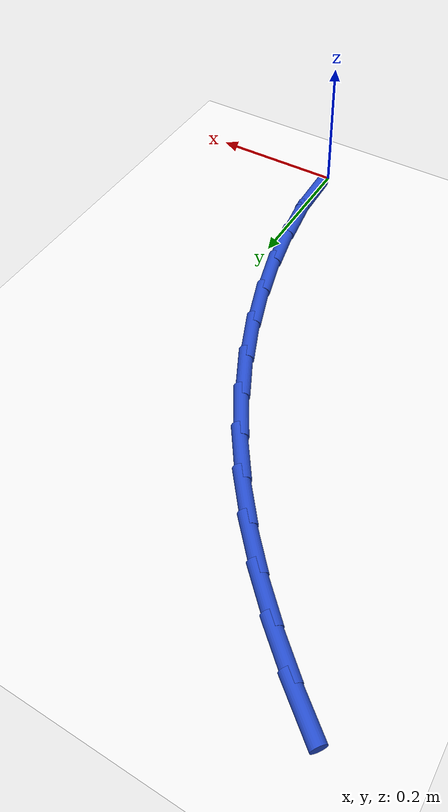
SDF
<sdf version="1.6">
 <world name="default">
  <model name="ground_plane">
   <static>1</static>
   <link name="link">
    <collision name="collision">
     <geometry><plane><normal>0 0 1</normal><size>100 100</size></plane></geometry>
     <surface><friction><ode><mu>100</mu><mu2>50</mu2></ode></friction></surface>
    </collision>
    <visual name="visual">
     <cast_shadows>0</cast_shadows>
     <geometry><plane><normal>0 0 1</normal><size>100 100</size></plane></geometry>
     <material>
      <script><uri>file://media/materials/scripts/gazebo.material</uri><name>Gazebo/WhiteGlow</name></script>
     </material>
    </visual>
   </link>
  </model>
  <model name="line">
   <link name="link_2">
    <pose>-0.008749417525320376 0.12793536772634137 0.01 0 1.57 -1.4085324584083592</pose>
    <collision name="collision">
     <geometry><cylinder><radius>0.01</radius><length>0.08</length></cylinder></geometry>
    </collision>
    <visual name="visual">
     <material>
      <script><name>Gazebo/Blue</name><uri>file://media/materials/scripts/gazebo.material</uri></script>
     </material>
     <geometry><cylinder><radius>0.01</radius><length>0.08</length></cylinder></geometry>
    </visual>
   </link>
   <link name="link_3">
    <pose>-0.019140808998990202 0.19141241177788448 0.01 0 1.57 -1.3468980171757865</pose>
    <collision name="collision">
     <geometry><cylinder><radius>0.01</radius><length>0.08</length></cylinder></geometry>
    </collision>
    <visual name="visual">
     <material>
      <script><name>Gazebo/Blue</name><uri>file://media/materials/scripts/gazebo.material</uri></script>
     </material>
     <geometry><cylinder><radius>0.01</radius><length>0.08</length></cylinder></geometry>
    </visual>
   </link>
   <link name="link_4">
    <pose>-0.033404933188849815 0.2540523134822965 0.01 0 1.57 -1.2852200694684035</pose>
    <collision name="collision">
     <geometry><cylinder><radius>0.01</radius><length>0.08</length></cylinder></geometry>
    </collision>
    <visual name="visual">
     <material>
      <script><name>Gazebo/Blue</name><uri>file://media/materials/scripts/gazebo.material</uri></script>
     </material>
     <geometry><cylinder><radius>0.01</radius><length>0.08</length></cylinder></geometry>
    </visual>
   </link>
   <link name="link_5">
    <pose>-0.051437998276536834 0.31547253598504327 0.01 0 1.57 -1.2228197338316629</pose>
    <collision name="collision">
     <geometry><cylinder><radius>0.01</radius><length>0.08</length></cylinder></geometry>
    </collision>
    <visual name="visual">
     <material>
      <script><name>Gazebo/Blue</name><uri>file://media/materials/scripts/gazebo.material</uri></script>
     </material>
     <geometry><cylinder><radius>0.01</radius><length>0.08</length></cylinder></geometry>
    </visual>
   </link>
   <link name="link_6">
    <pose>-0.07313621244368873 0.3752905424315901 0.01 0 1.57 -1.159002527573079</pose>
    <collision name="collision">
     <geometry><cylinder><radius>0.01</radius><length>0.08</length></cylinder></geometry>
    </collision>
    <visual name="visual">
     <material>
      <script><name>Gazebo/Blue</name><uri>file://media/materials/scripts/gazebo.material</uri></script>
     </material>
     <geometry><cylinder><radius>0.01</radius><length>0.08</length></cylinder></geometry>
    </visual>
   </link>
   <link name="link_7">
    <pose>-0.09839578387194312 0.4331237959674028 0.01 0 1.57 -1.0930549631840571</pose>
    <collision name="collision">
     <geometry><cylinder><radius>0.01</radius><length>0.08</length></cylinder></geometry>
    </collision>
    <visual name="visual">
     <material>
      <script><name>Gazebo/Blue</name><uri>file://media/materials/scripts/gazebo.material</uri></script>
     </material>
     <geometry><cylinder><radius>0.01</radius><length>0.08</length></cylinder></geometry>
    </visual>
   </link>
   <link name="link_8">
    <pose>-0.1271129207429375 0.48858975973794666 0.01 0 1.57 -1.0242452178099517</pose>
    <collision name="collision">
     <geometry><cylinder><radius>0.01</radius><length>0.08</length></cylinder></geometry>
    </collision>
    <visual name="visual">
     <material>
      <script><name>Gazebo/Blue</name><uri>file://media/materials/scripts/gazebo.material</uri></script>
     </material>
     <geometry><cylinder><radius>0.01</radius><length>0.08</length></cylinder></geometry>
    </visual>
   </link>
   <link name="link_9">
    <pose>-0.15918383120052648 0.5413058971315466 0.01 0 1.57 -0.9531694209271656</pose>
    <collision name="collision">
     <geometry><cylinder><radius>0.01</radius><length>0.08</length></cylinder></geometry>
    </collision>
    <visual name="visual">
     <material>
      <script><name>Gazebo/Blue</name><uri>file://media/materials/scripts/gazebo.material</uri></script>
     </material>
     <geometry><cylinder><radius>0.01</radius><length>0.08</length></cylinder></geometry>
    </visual>
   </link>
   <link name="link_10">
    <pose>-0.1944867697297637 0.5910050725846794 0.01 0 1.57 -0.8850038955536954</pose>
    <collision name="collision">
     <geometry><cylinder><radius>0.01</radius><length>0.08</length></cylinder></geometry>
    </collision>
    <visual name="visual">
     <material>
      <script><name>Gazebo/Blue</name><uri>file://media/materials/scripts/gazebo.material</uri></script>
     </material>
     <geometry><cylinder><radius>0.01</radius><length>0.08</length></cylinder></geometry>
    </visual>
   </link>
   <link name="link_11">
    <pose>-0.23283091860178506 0.6378641272169503 0.01 0 1.57 -0.8219352340409666</pose>
    <collision name="collision">
     <geometry><cylinder><radius>0.01</radius><length>0.08</length></cylinder></geometry>
    </collision>
    <visual name="visual">
     <material>
      <script><name>Gazebo/Blue</name><uri>file://media/materials/scripts/gazebo.material</uri></script>
     </material>
     <geometry><cylinder><radius>0.01</radius><length>0.08</length></cylinder></geometry>
    </visual>
   </link>
   <link name="link_12">
    <pose>-0.27400885165198086 0.6821666564822485 0.01 0 1.57 -0.7647252231543189</pose>
    <collision name="collision">
     <geometry><cylinder><radius>0.01</radius><length>0.08</length></cylinder></geometry>
    </collision>
    <visual name="visual">
     <material>
      <script><name>Gazebo/Blue</name><uri>file://media/materials/scripts/gazebo.material</uri></script>
     </material>
     <geometry><cylinder><radius>0.01</radius><length>0.08</length></cylinder></geometry>
    </visual>
   </link>
   <link name="link_13">
    <pose>-0.31781314271574124 0.724196255834464 0.01 0 1.57 -0.7138452653900448</pose>
    <collision name="collision">
     <geometry><cylinder><radius>0.01</radius><length>0.08</length></cylinder></geometry>
    </collision>
    <visual name="visual">
     <material>
      <script><name>Gazebo/Blue</name><uri>file://media/materials/scripts/gazebo.material</uri></script>
     </material>
     <geometry><cylinder><radius>0.01</radius><length>0.08</length></cylinder></geometry>
    </visual>
   </link>
   <link name="link_14">
    <pose>-0.36403636562845626 0.7642365207274856 0.01 0 1.57 -0.6695166570556986</pose>
    <collision name="collision">
     <geometry><cylinder><radius>0.01</radius><length>0.08</length></cylinder></geometry>
    </collision>
    <visual name="visual">
     <material>
      <script><name>Gazebo/Blue</name><uri>file://media/materials/scripts/gazebo.material</uri></script>
     </material>
     <geometry><cylinder><radius>0.01</radius><length>0.08</length></cylinder></geometry>
    </visual>
   </link>
   <link name="link_111">
    <pose>-0.0023627146195909048 0.0640382644787575 0.01 0 1.57 -1.5339176977723896</pose>
    <collision name="collision">
     <geometry><cylinder><radius>0.01</radius><length>0.08</length></cylinder></geometry>
    </collision>
    <visual name="visual">
     <material>
      <script><name>Gazebo/Blue</name><uri>file://media/materials/scripts/gazebo.material</uri></script>
     </material>
     <geometry><cylinder><radius>0.01</radius><length>0.08</length></cylinder></geometry>
    </visual>
   </link>
  </model>
 </world>
</sdf>
